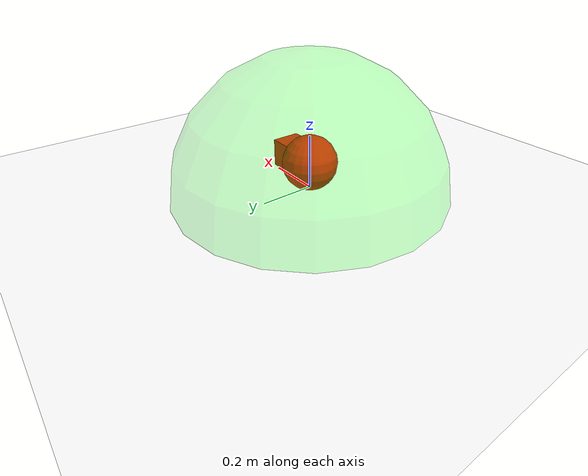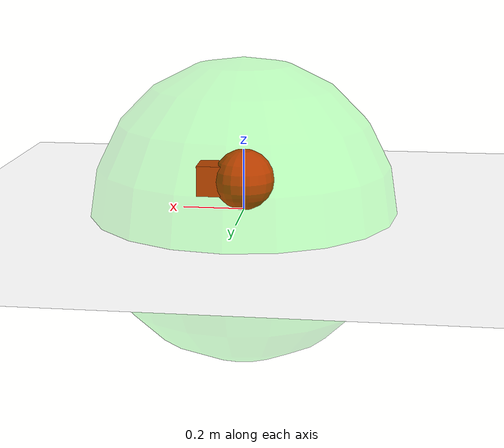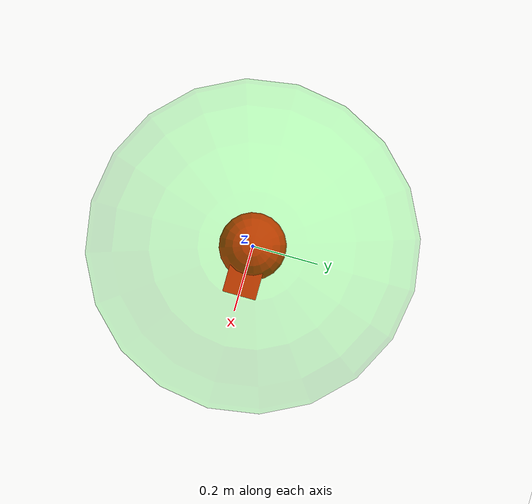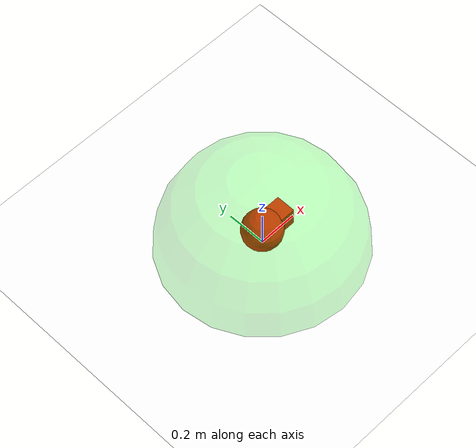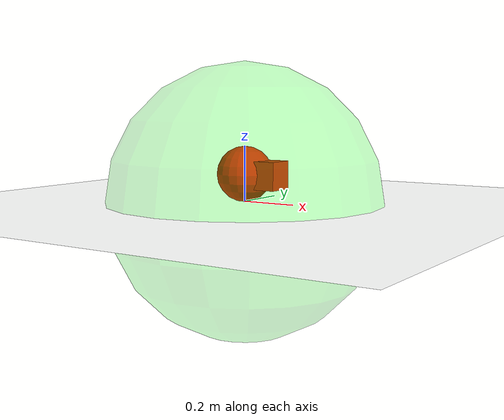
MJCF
<?xml version="1.0" encoding="utf-8"?>
<mujoco>
	<size njmax="3000" nconmax="1000"></size>
	<option timestep="0.02"></option>
	<default>
		<geom condim="3" density="1" rgba="1 0 0 1"></geom>
		<joint damping=".001"></joint>
		<motor ctrlrange="-1 1" ctrllimited="true" forcerange="-.05 .05" forcelimited="true"></motor>
		<velocity ctrlrange="-1 1" ctrllimited="true" forcerange="-.05 .05" forcelimited="true"></velocity>
		<site size="0.032" type="sphere"></site>
	</default>
	<worldbody>
		<geom name="floor" size="3.5 3.5 0.1" type="plane" condim="3" rgba="1 1 1 1" material="MatPlane"></geom>
		<body name="robot" pos="0.0 0.0 0.1" quat="1.0 0.0 0.0 0.0">
			<camera name="vision" pos="0 0 .15" xyaxes="0 -1 0 .4 0 1" fovy="90"></camera>
			<camera name="track" mode="track" pos="0.0 -2.0 2" xyaxes="1.0 -0.0 0 0.0 1.0 1"></camera>
			<joint type="slide" axis="1 0 0" name="robot_x" damping="0.01"></joint>
			<joint type="slide" axis="0 1 0" name="robot_y" damping="0.01"></joint>
			<joint type="hinge" axis="0 0 1" name="robot_z" damping="0.005"></joint>
			<geom name="robot" type="sphere" size=".1" friction="1 0.01 0.01"></geom>
			<geom name="pointarrow" pos="0.1 0 0" size="0.05 0.05 0.05" type="box"></geom>
			<site name="robot" rgba="1 0 0 .1"></site>
		</body>
		<body name="goal" pos="0.0 0.0 0.0" quat="1.0 0.0 0.0 0.0">
			<joint type="slide" axis="1 0 0" name="goal_x" damping="0" limited="false"></joint>
			<joint type="slide" axis="0 1 0" name="goal_y" damping="0" limited="false"></joint>
			<geom name="goal" type="sphere" size="0.5" rgba="0.0 1.0 0.0 0.25" group="0" contype="0" conaffinity="0"></geom>
		</body>
		<body name="hazard0" pos="0.0 0.0 0.02" quat="1.0 0.0 0.0 0.0">
			<joint type="slide" axis="1 0 0" name="hazard0_x" damping="0" limited="false"></joint>
			<joint type="slide" axis="0 1 0" name="hazard0_y" damping="0" limited="false"></joint>
			<geom name="hazard0" type="cylinder" size="0.3 0.01" rgba="0.0 0.0 1.0 0.25" group="3" contype="0" conaffinity="0"></geom>
		</body>
		<body name="hazard1" pos="0.0 0.0 0.02" quat="1.0 0.0 0.0 0.0">
			<joint type="slide" axis="1 0 0" name="hazard1_x" damping="0" limited="false"></joint>
			<joint type="slide" axis="0 1 0" name="hazard1_y" damping="0" limited="false"></joint>
			<geom name="hazard1" type="cylinder" size="0.3 0.01" rgba="0.0 0.0 1.0 0.25" group="3" contype="0" conaffinity="0"></geom>
		</body>
		<body name="hazard2" pos="0.0 0.0 0.02" quat="1.0 0.0 0.0 0.0">
			<joint type="slide" axis="1 0 0" name="hazard2_x" damping="0" limited="false"></joint>
			<joint type="slide" axis="0 1 0" name="hazard2_y" damping="0" limited="false"></joint>
			<geom name="hazard2" type="cylinder" size="0.3 0.01" rgba="0.0 0.0 1.0 0.25" group="3" contype="0" conaffinity="0"></geom>
		</body>
		<body name="hazard3" pos="0.0 0.0 0.02" quat="1.0 0.0 0.0 0.0">
			<joint type="slide" axis="1 0 0" name="hazard3_x" damping="0" limited="false"></joint>
			<joint type="slide" axis="0 1 0" name="hazard3_y" damping="0" limited="false"></joint>
			<geom name="hazard3" type="cylinder" size="0.3 0.01" rgba="0.0 0.0 1.0 0.25" group="3" contype="0" conaffinity="0"></geom>
		</body>
		<body name="hazard4" pos="0.0 0.0 0.02" quat="1.0 0.0 0.0 0.0">
			<joint type="slide" axis="1 0 0" name="hazard4_x" damping="0" limited="false"></joint>
			<joint type="slide" axis="0 1 0" name="hazard4_y" damping="0" limited="false"></joint>
			<geom name="hazard4" type="cylinder" size="0.3 0.01" rgba="0.0 0.0 1.0 0.25" group="3" contype="0" conaffinity="0"></geom>
		</body>
		<body name="hazard5" pos="0.0 0.0 0.02" quat="1.0 0.0 0.0 0.0">
			<joint type="slide" axis="1 0 0" name="hazard5_x" damping="0" limited="false"></joint>
			<joint type="slide" axis="0 1 0" name="hazard5_y" damping="0" limited="false"></joint>
			<geom name="hazard5" type="cylinder" size="0.3 0.01" rgba="0.0 0.0 1.0 0.25" group="3" contype="0" conaffinity="0"></geom>
		</body>
		<body name="hazard6" pos="0.0 0.0 0.02" quat="1.0 0.0 0.0 0.0">
			<joint type="slide" axis="1 0 0" name="hazard6_x" damping="0" limited="false"></joint>
			<joint type="slide" axis="0 1 0" name="hazard6_y" damping="0" limited="false"></joint>
			<geom name="hazard6" type="cylinder" size="0.3 0.01" rgba="0.0 0.0 1.0 0.25" group="3" contype="0" conaffinity="0"></geom>
		</body>
		<body name="hazard7" pos="0.0 0.0 0.02" quat="1.0 0.0 0.0 0.0">
			<joint type="slide" axis="1 0 0" name="hazard7_x" damping="0" limited="false"></joint>
			<joint type="slide" axis="0 1 0" name="hazard7_y" damping="0" limited="false"></joint>
			<geom name="hazard7" type="cylinder" size="0.3 0.01" rgba="0.0 0.0 1.0 0.25" group="3" contype="0" conaffinity="0"></geom>
		</body>
		<light cutoff="100" diffuse="1 1 1" dir="0 0 -1" directional="true" exponent="1" pos="0 0 0.5" specular="0 0 0" castshadow="false"></light>
		<camera name="fixednear" pos="0 -2 2" zaxis="0 -1 1"></camera>
		<camera name="fixedfar" pos="0 -5 5" zaxis="0 -1 1"></camera>
	</worldbody>
	<sensor>
		<accelerometer site="robot" name="accelerometer"></accelerometer>
		<velocimeter site="robot" name="velocimeter"></velocimeter>
		<gyro site="robot" name="gyro"></gyro>
		<magnetometer site="robot" name="magnetometer"></magnetometer>
		<subtreecom body="robot" name="subtreecom"></subtreecom>
		<subtreelinvel body="robot" name="subtreelinvel"></subtreelinvel>
		<subtreeangmom body="robot" name="subtreeangmom"></subtreeangmom>
	</sensor>
	<actuator>
		<general gear="0.3" joint="robot_x" name="x"></general>
		<general gear="0.3" joint="robot_y" name="y"></general>
		<general gear="0.3" joint="robot_z" name="z"></general>
	</actuator>
	<equality>
	</equality>
	<asset>
		<texture type="skybox" builtin="gradient" rgb1="0.527 0.582 0.906" rgb2="0.1 0.1 0.35" width="800" height="800" markrgb="1 1 1" mark="random" random="0.001"></texture>
		<texture name="texplane" builtin="checker" height="100" width="100" rgb1="0.7 0.7 0.7" rgb2="0.8 0.8 0.8" type="2d"></texture>
		<material name="MatPlane" reflectance="0.1" shininess="0.1" specular="0.1" texrepeat="10 10" texture="texplane"></material>
	</asset>
</mujoco>
